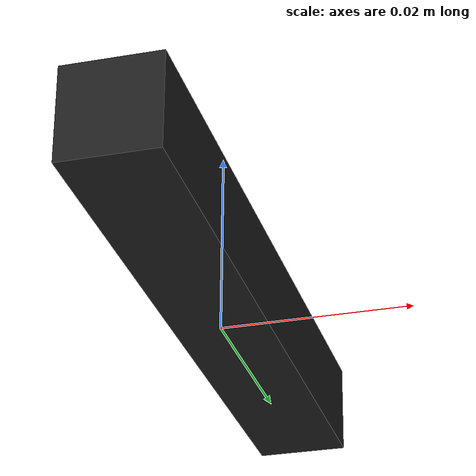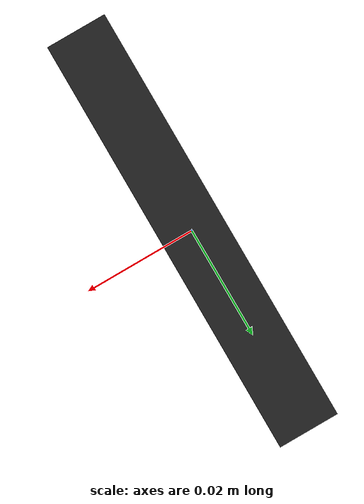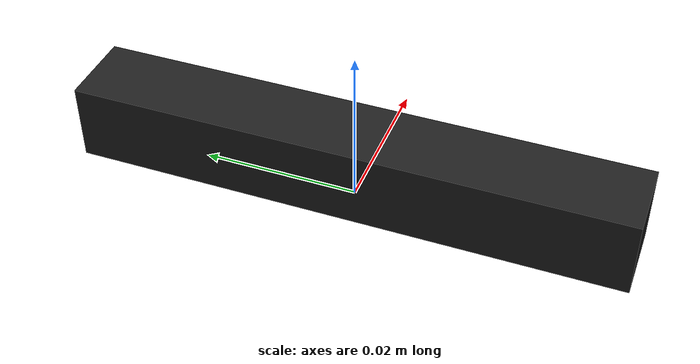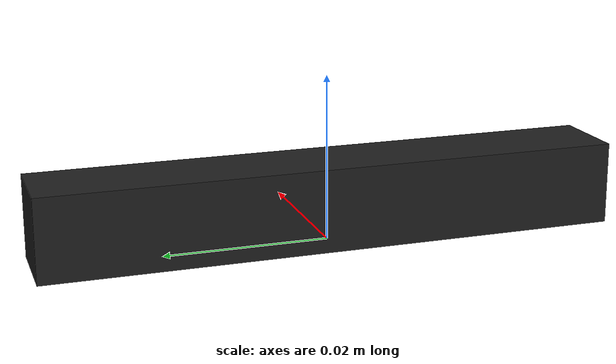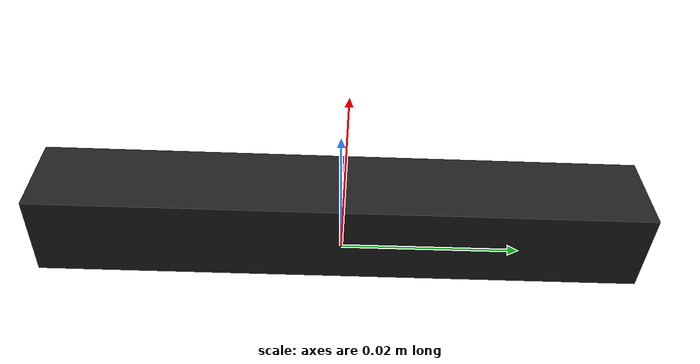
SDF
<?xml version="1.0" ?>
<sdf version="1.6">
  <model name="mathstick7">
    <static>false</static>
    <link name="link">
      <collision name="collision">
        <geometry>
          <mesh>
            <uri>model://mathstick7/meshes/MathStick7.stl</uri>
            <scale>0.001 0.001 0.001</scale>
          </mesh>
        </geometry>
        <surface>
          <friction>
            <ode>
              <mu>100.0</mu> <!-- High coefficient of friction -->
              <mu2>100.0</mu2> <!-- High coefficient of friction -->
            </ode>
          </friction>
        </surface>
      </collision>
      <visual name="visual">
        <geometry>
          <mesh>
            <uri>model://mathstick7/meshes/MathStick7.stl</uri>
            <scale>0.001 0.001 0.001</scale>
          </mesh>
        </geometry>
        <material>
          <script>
            <uri>file://media/materials/scripts/gazebo.material</uri>
            <name>Gazebo/Black</name> <!-- Change this to the desired color -->
          </script>
        </material>
      </visual>
      <inertial>
        <mass>0.035</mass>
        <inertia>
          <ixx>0.0000145833333333333</ixx>
          <ixy>0.0</ixy>
          <ixz>0.0</ixz>
          <iyy>0.000000583333333333333</iyy>
          <iyz>0.0</iyz>
          <izz>0.0000145833333333333</izz>
        </inertia>
      </inertial>
    </link>
  </model>
</sdf>
